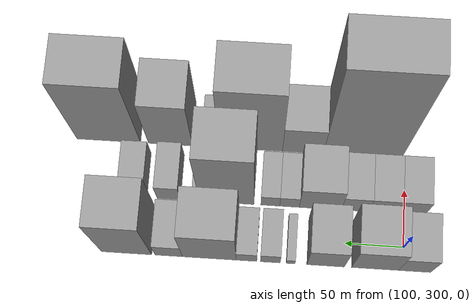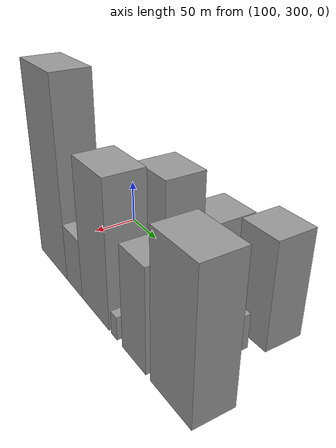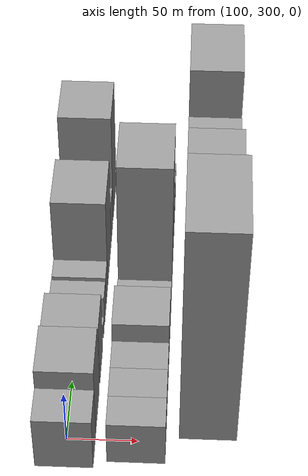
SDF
<sdf version="1.6">
 <world name="default">
  <model name="building_27">
   <static>1</static>
   <pose>100.0000 290.3768 0 0.000000 0.000000 0.000000</pose>
   <link name="link">
    <pose>0 0 25.50 0 0 0</pose>
    <collision name="collision"><geometry><box><size>40.0000 27.2832 51.0000</size></box></geometry></collision>
    <visual name="visual">
     <cast_shadows>0</cast_shadows>
     <geometry><box><size>40.0000 27.2832 51.0000</size></box></geometry>
     <material>
      <script>
       <uri>model://grey_wall/materials/scripts</uri>
       <uri>model://grey_wall/materials/textures</uri>
       <name>vrc/grey_wall</name>
      </script>
     </material>
    </visual>
   </link>
  </model>
  <model name="building_28">
   <static>1</static>
   <pose>100.0000 323.7900 0 0.000000 0.000000 0.000000</pose>
   <link name="link">
    <pose>0 0 34.50 0 0 0</pose>
    <collision name="collision"><geometry><box><size>40.0000 39.5433 69.0000</size></box></geometry></collision>
    <visual name="visual">
     <cast_shadows>0</cast_shadows>
     <geometry><box><size>40.0000 39.5433 69.0000</size></box></geometry>
     <material>
      <script>
       <uri>model://grey_wall/materials/scripts</uri>
       <uri>model://grey_wall/materials/textures</uri>
       <name>vrc/grey_wall</name>
      </script>
     </material>
    </visual>
   </link>
  </model>
  <model name="building_29">
   <static>1</static>
   <pose>100.0000 365.4495 0 0.000000 0.000000 0.000000</pose>
   <link name="link">
    <pose>0 0 30.00 0 0 0</pose>
    <collision name="collision"><geometry><box><size>40.0000 31.7757 60.0000</size></box></geometry></collision>
    <visual name="visual">
     <cast_shadows>0</cast_shadows>
     <geometry><box><size>40.0000 31.7757 60.0000</size></box></geometry>
     <material>
      <script>
       <uri>model://grey_wall/materials/scripts</uri>
       <uri>model://grey_wall/materials/textures</uri>
       <name>vrc/grey_wall</name>
      </script>
     </material>
    </visual>
   </link>
  </model>
  <model name="building_30">
   <static>1</static>
   <pose>100.0000 395.0855 0 0.000000 0.000000 0.000000</pose>
   <link name="link">
    <pose>0 0 7.50 0 0 0</pose>
    <collision name="collision"><geometry><box><size>40.0000 7.4964 15.0000</size></box></geometry></collision>
    <visual name="visual">
     <cast_shadows>0</cast_shadows>
     <geometry><box><size>40.0000 7.4964 15.0000</size></box></geometry>
     <material>
      <script>
       <uri>model://grey_wall/materials/scripts</uri>
       <uri>model://grey_wall/materials/textures</uri>
       <name>vrc/grey_wall</name>
      </script>
     </material>
    </visual>
   </link>
  </model>
  <model name="building_31">
   <static>1</static>
   <pose>100.0000 412.2451 0 0.000000 0.000000 0.000000</pose>
   <link name="link">
    <pose>0 0 15.00 0 0 0</pose>
    <collision name="collision"><geometry><box><size>40.0000 16.8228 30.0000</size></box></geometry></collision>
    <visual name="visual">
     <cast_shadows>0</cast_shadows>
     <geometry><box><size>40.0000 16.8228 30.0000</size></box></geometry>
     <material>
      <script>
       <uri>model://grey_wall/materials/scripts</uri>
       <uri>model://grey_wall/materials/textures</uri>
       <name>vrc/grey_wall</name>
      </script>
     </material>
    </visual>
   </link>
  </model>
  <model name="building_32">
   <static>1</static>
   <pose>100.0000 432.3515 0 0.000000 0.000000 0.000000</pose>
   <link name="link">
    <pose>0 0 15.00 0 0 0</pose>
    <collision name="collision"><geometry><box><size>40.0000 17.3901 30.0000</size></box></geometry></collision>
    <visual name="visual">
     <cast_shadows>0</cast_shadows>
     <geometry><box><size>40.0000 17.3901 30.0000</size></box></geometry>
     <material>
      <script>
       <uri>model://grey_wall/materials/scripts</uri>
       <uri>model://grey_wall/materials/textures</uri>
       <name>vrc/grey_wall</name>
      </script>
     </material>
    </visual>
   </link>
  </model>
  <model name="building_33">
   <static>1</static>
   <pose>100.0000 463.8731 0 0.000000 0.000000 0.000000</pose>
   <link name="link">
    <pose>0 0 45.00 0 0 0</pose>
    <collision name="collision"><geometry><box><size>40.0000 45.6530 90.0000</size></box></geometry></collision>
    <visual name="visual">
     <cast_shadows>0</cast_shadows>
     <geometry><box><size>40.0000 45.6530 90.0000</size></box></geometry>
     <material>
      <script>
       <uri>model://grey_wall/materials/scripts</uri>
       <uri>model://grey_wall/materials/textures</uri>
       <name>vrc/grey_wall</name>
      </script>
     </material>
    </visual>
   </link>
  </model>
  <model name="building_34">
   <static>1</static>
   <pose>100.0000 498.3112 0 0.000000 0.000000 0.000000</pose>
   <link name="link">
    <pose>0 0 19.50 0 0 0</pose>
    <collision name="collision"><geometry><box><size>40.0000 23.2232 39.0000</size></box></geometry></collision>
    <visual name="visual">
     <cast_shadows>0</cast_shadows>
     <geometry><box><size>40.0000 23.2232 39.0000</size></box></geometry>
     <material>
      <script>
       <uri>model://grey_wall/materials/scripts</uri>
       <uri>model://grey_wall/materials/textures</uri>
       <name>vrc/grey_wall</name>
      </script>
     </material>
    </visual>
   </link>
  </model>
  <model name="building_35">
   <static>1</static>
   <pose>100.0000 534.2244 0 0.000000 0.000000 0.000000</pose>
   <link name="link">
    <pose>0 0 54.00 0 0 0</pose>
    <collision name="collision"><geometry><box><size>40.0000 42.6031 108.0000</size></box></geometry></collision>
    <visual name="visual">
     <cast_shadows>0</cast_shadows>
     <geometry><box><size>40.0000 42.6031 108.0000</size></box></geometry>
     <material>
      <script>
       <uri>model://grey_wall/materials/scripts</uri>
       <uri>model://grey_wall/materials/textures</uri>
       <name>vrc/grey_wall</name>
      </script>
     </material>
    </visual>
   </link>
  </model>
  <model name="building_62">
   <static>1</static>
   <pose>149.0000 294.3569 0 0.000000 0.000000 0.000000</pose>
   <link name="link">
    <pose>0 0 21.00 0 0 0</pose>
    <collision name="collision"><geometry><box><size>40.0000 24.2881 42.0000</size></box></geometry></collision>
    <visual name="visual">
     <cast_shadows>0</cast_shadows>
     <geometry><box><size>40.0000 24.2881 42.0000</size></box></geometry>
     <material>
      <script>
       <uri>model://grey_wall/materials/scripts</uri>
       <uri>model://grey_wall/materials/textures</uri>
       <name>vrc/grey_wall</name>
      </script>
     </material>
    </visual>
   </link>
  </model>
  <model name="building_63">
   <static>1</static>
   <pose>149.0000 318.6887 0 0.000000 0.000000 0.000000</pose>
   <link name="link">
    <pose>0 0 21.00 0 0 0</pose>
    <collision name="collision"><geometry><box><size>40.0000 24.3755 42.0000</size></box></geometry></collision>
    <visual name="visual">
     <cast_shadows>0</cast_shadows>
     <geometry><box><size>40.0000 24.3755 42.0000</size></box></geometry>
     <material>
      <script>
       <uri>model://grey_wall/materials/scripts</uri>
       <uri>model://grey_wall/materials/textures</uri>
       <name>vrc/grey_wall</name>
      </script>
     </material>
    </visual>
   </link>
  </model>
  <model name="building_64">
   <static>1</static>
   <pose>149.0000 342.6336 0 0.000000 0.000000 0.000000</pose>
   <link name="link">
    <pose>0 0 21.00 0 0 0</pose>
    <collision name="collision"><geometry><box><size>40.0000 23.5143 42.0000</size></box></geometry></collision>
    <visual name="visual">
     <cast_shadows>0</cast_shadows>
     <geometry><box><size>40.0000 23.5143 42.0000</size></box></geometry>
     <material>
      <script>
       <uri>model://grey_wall/materials/scripts</uri>
       <uri>model://grey_wall/materials/textures</uri>
       <name>vrc/grey_wall</name>
      </script>
     </material>
    </visual>
   </link>
  </model>
  <model name="building_65">
   <static>1</static>
   <pose>149.0000 372.3625 0 0.000000 0.000000 0.000000</pose>
   <link name="link">
    <pose>0 0 30.00 0 0 0</pose>
    <collision name="collision"><geometry><box><size>40.0000 35.9435 60.0000</size></box></geometry></collision>
    <visual name="visual">
     <cast_shadows>0</cast_shadows>
     <geometry><box><size>40.0000 35.9435 60.0000</size></box></geometry>
     <material>
      <script>
       <uri>model://grey_wall/materials/scripts</uri>
       <uri>model://grey_wall/materials/textures</uri>
       <name>vrc/grey_wall</name>
      </script>
     </material>
    </visual>
   </link>
  </model>
  <model name="building_66">
   <static>1</static>
   <pose>149.0000 398.7311 0 0.000000 0.000000 0.000000</pose>
   <link name="link">
    <pose>0 0 15.00 0 0 0</pose>
    <collision name="collision"><geometry><box><size>40.0000 16.7937 30.0000</size></box></geometry></collision>
    <visual name="visual">
     <cast_shadows>0</cast_shadows>
     <geometry><box><size>40.0000 16.7937 30.0000</size></box></geometry>
     <material>
      <script>
       <uri>model://grey_wall/materials/scripts</uri>
       <uri>model://grey_wall/materials/textures</uri>
       <name>vrc/grey_wall</name>
      </script>
     </material>
    </visual>
   </link>
  </model>
  <model name="building_67">
   <static>1</static>
   <pose>149.0000 415.1891 0 0.000000 0.000000 0.000000</pose>
   <link name="link">
    <pose>0 0 15.00 0 0 0</pose>
    <collision name="collision"><geometry><box><size>40.0000 16.1221 30.0000</size></box></geometry></collision>
    <visual name="visual">
     <cast_shadows>0</cast_shadows>
     <geometry><box><size>40.0000 16.1221 30.0000</size></box></geometry>
     <material>
      <script>
       <uri>model://grey_wall/materials/scripts</uri>
       <uri>model://grey_wall/materials/textures</uri>
       <name>vrc/grey_wall</name>
      </script>
     </material>
    </visual>
   </link>
  </model>
  <model name="building_68">
   <static>1</static>
   <pose>149.0000 452.6237 0 0.000000 0.000000 0.000000</pose>
   <link name="link">
    <pose>0 0 69.00 0 0 0</pose>
    <collision name="collision"><geometry><box><size>40.0000 46.7470 138.0000</size></box></geometry></collision>
    <visual name="visual">
     <cast_shadows>0</cast_shadows>
     <geometry><box><size>40.0000 46.7470 138.0000</size></box></geometry>
     <material>
      <script>
       <uri>model://grey_wall/materials/scripts</uri>
       <uri>model://grey_wall/materials/textures</uri>
       <name>vrc/grey_wall</name>
      </script>
     </material>
    </visual>
   </link>
  </model>
  <model name="building_69">
   <static>1</static>
   <pose>149.0000 479.2712 0 0.000000 0.000000 0.000000</pose>
   <link name="link">
    <pose>0 0 7.50 0 0 0</pose>
    <collision name="collision"><geometry><box><size>40.0000 6.5481 15.0000</size></box></geometry></collision>
    <visual name="visual">
     <cast_shadows>0</cast_shadows>
     <geometry><box><size>40.0000 6.5481 15.0000</size></box></geometry>
     <material>
      <script>
       <uri>model://grey_wall/materials/scripts</uri>
       <uri>model://grey_wall/materials/textures</uri>
       <name>vrc/grey_wall</name>
      </script>
     </material>
    </visual>
   </link>
  </model>
  <model name="building_70">
   <static>1</static>
   <pose>149.0000 502.5704 0 0.000000 0.000000 0.000000</pose>
   <link name="link">
    <pose>0 0 19.50 0 0 0</pose>
    <collision name="collision"><geometry><box><size>40.0000 20.0504 39.0000</size></box></geometry></collision>
    <visual name="visual">
     <cast_shadows>0</cast_shadows>
     <geometry><box><size>40.0000 20.0504 39.0000</size></box></geometry>
     <material>
      <script>
       <uri>model://grey_wall/materials/scripts</uri>
       <uri>model://grey_wall/materials/textures</uri>
       <name>vrc/grey_wall</name>
      </script>
     </material>
    </visual>
   </link>
  </model>
  <model name="building_71">
   <static>1</static>
   <pose>149.0000 532.3812 0 0.000000 0.000000 0.000000</pose>
   <link name="link">
    <pose>0 0 18.00 0 0 0</pose>
    <collision name="collision"><geometry><box><size>40.0000 21.5711 36.0000</size></box></geometry></collision>
    <visual name="visual">
     <cast_shadows>0</cast_shadows>
     <geometry><box><size>40.0000 21.5711 36.0000</size></box></geometry>
     <material>
      <script>
       <uri>model://grey_wall/materials/scripts</uri>
       <uri>model://grey_wall/materials/textures</uri>
       <name>vrc/grey_wall</name>
      </script>
     </material>
    </visual>
   </link>
  </model>
  <model name="building_94">
   <static>1</static>
   <pose>198.0000 337.5864 0 0.000000 0.000000 0.000000</pose>
   <link name="link">
    <pose>0 0 103.50 0 0 0</pose>
    <collision name="collision"><geometry><box><size>40.0000 68.1802 207.0000</size></box></geometry></collision>
    <visual name="visual">
     <cast_shadows>0</cast_shadows>
     <geometry><box><size>40.0000 68.1802 207.0000</size></box></geometry>
     <material>
      <script>
       <uri>model://grey_wall/materials/scripts</uri>
       <uri>model://grey_wall/materials/textures</uri>
       <name>vrc/grey_wall</name>
      </script>
     </material>
    </visual>
   </link>
  </model>
  <model name="building_95">
   <static>1</static>
   <pose>198.0000 389.5168 0 0.000000 0.000000 0.000000</pose>
   <link name="link">
    <pose>0 0 31.50 0 0 0</pose>
    <collision name="collision"><geometry><box><size>40.0000 35.6807 63.0000</size></box></geometry></collision>
    <visual name="visual">
     <cast_shadows>0</cast_shadows>
     <geometry><box><size>40.0000 35.6807 63.0000</size></box></geometry>
     <material>
      <script>
       <uri>model://grey_wall/materials/scripts</uri>
       <uri>model://grey_wall/materials/textures</uri>
       <name>vrc/grey_wall</name>
      </script>
     </material>
    </visual>
   </link>
  </model>
  <model name="building_96">
   <static>1</static>
   <pose>198.0000 434.8635 0 0.000000 0.000000 0.000000</pose>
   <link name="link">
    <pose>0 0 73.50 0 0 0</pose>
    <collision name="collision"><geometry><box><size>40.0000 55.0126 147.0000</size></box></geometry></collision>
    <visual name="visual">
     <cast_shadows>0</cast_shadows>
     <geometry><box><size>40.0000 55.0126 147.0000</size></box></geometry>
     <material>
      <script>
       <uri>model://grey_wall/materials/scripts</uri>
       <uri>model://grey_wall/materials/textures</uri>
       <name>vrc/grey_wall</name>
      </script>
     </material>
    </visual>
   </link>
  </model>
  <model name="building_97">
   <static>1</static>
   <pose>198.0000 471.7372 0 0.000000 0.000000 0.000000</pose>
   <link name="link">
    <pose>0 0 12.00 0 0 0</pose>
    <collision name="collision"><geometry><box><size>40.0000 10.7349 24.0000</size></box></geometry></collision>
    <visual name="visual">
     <cast_shadows>0</cast_shadows>
     <geometry><box><size>40.0000 10.7349 24.0000</size></box></geometry>
     <material>
      <script>
       <uri>model://grey_wall/materials/scripts</uri>
       <uri>model://grey_wall/materials/textures</uri>
       <name>vrc/grey_wall</name>
      </script>
     </material>
    </visual>
   </link>
  </model>
  <model name="building_98">
   <static>1</static>
   <pose>198.0000 505.4465 0 0.000000 0.000000 0.000000</pose>
   <link name="link">
    <pose>0 0 51.00 0 0 0</pose>
    <collision name="collision"><geometry><box><size>40.0000 38.6837 102.0000</size></box></geometry></collision>
    <visual name="visual">
     <cast_shadows>0</cast_shadows>
     <geometry><box><size>40.0000 38.6837 102.0000</size></box></geometry>
     <material>
      <script>
       <uri>model://grey_wall/materials/scripts</uri>
       <uri>model://grey_wall/materials/textures</uri>
       <name>vrc/grey_wall</name>
      </script>
     </material>
    </visual>
   </link>
  </model>
  <model name="building_99">
   <static>1</static>
   <pose>198.0000 559.7182 0 0.000000 0.000000 0.000000</pose>
   <link name="link">
    <pose>0 0 70.50 0 0 0</pose>
    <collision name="collision"><geometry><box><size>40.0000 55.8595 141.0000</size></box></geometry></collision>
    <visual name="visual">
     <cast_shadows>0</cast_shadows>
     <geometry><box><size>40.0000 55.8595 141.0000</size></box></geometry>
     <material>
      <script>
       <uri>model://grey_wall/materials/scripts</uri>
       <uri>model://grey_wall/materials/textures</uri>
       <name>vrc/grey_wall</name>
      </script>
     </material>
    </visual>
   </link>
  </model>
 </world>
</sdf>
